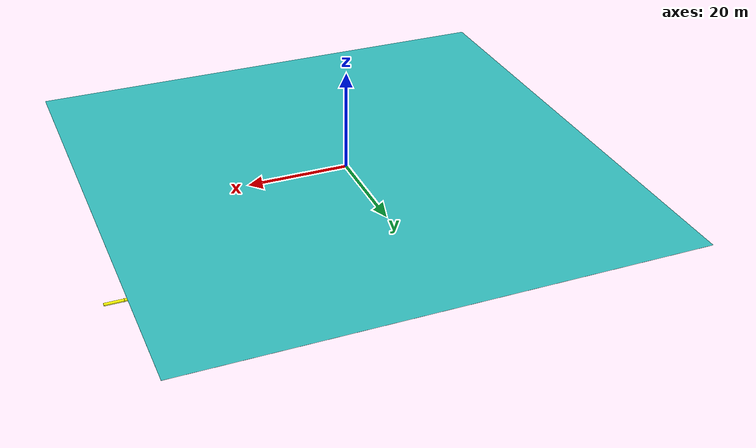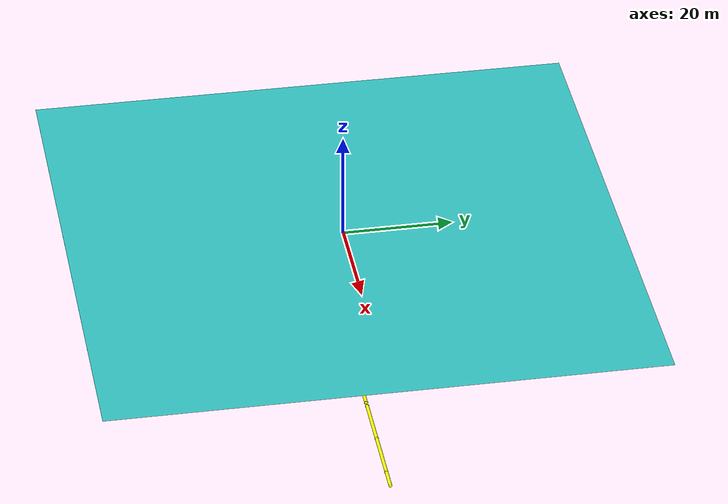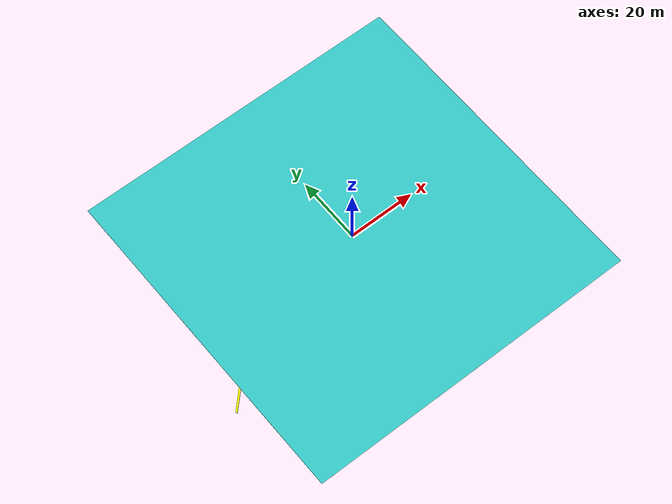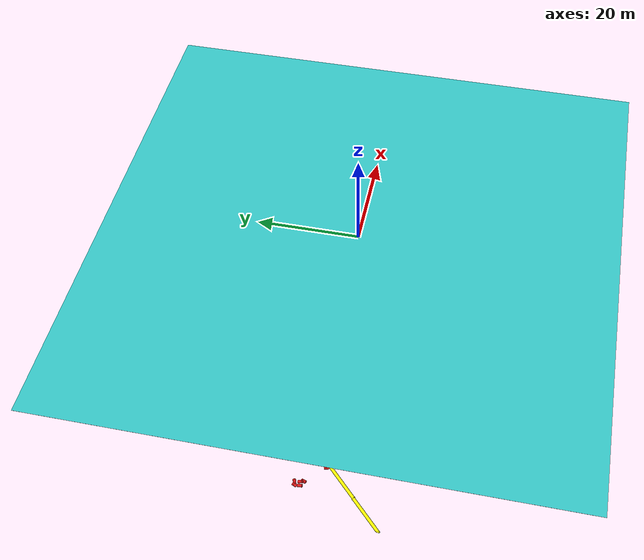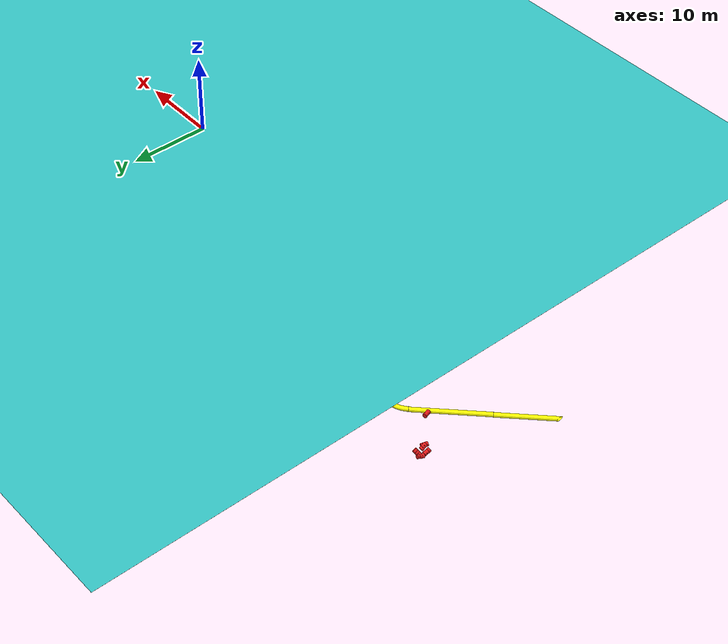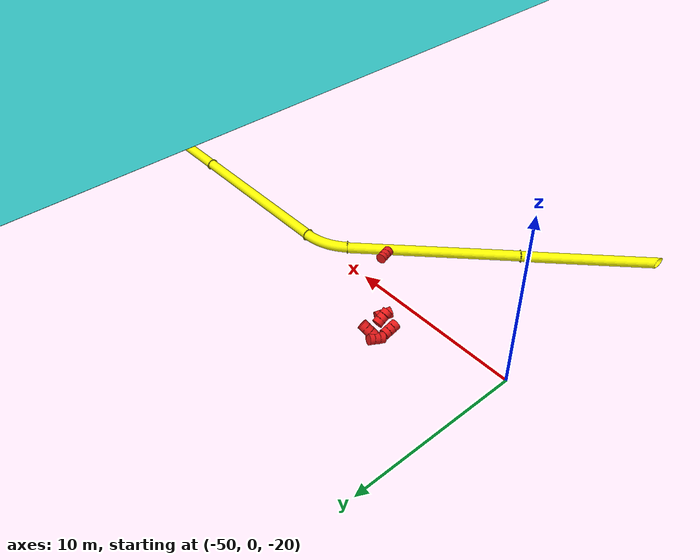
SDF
<sdf version="1.4">
 <world name="small_pipeline_world">
  <physics name="default_physics" default="true" type="ode">
   <max_step_size>0.01</max_step_size>
   <real_time_factor>1</real_time_factor>
   <real_time_update_rate>100</real_time_update_rate>
   <ode><solver><type>quick</type><iters>50</iters><sor>1.2</sor></solver></ode>
  </physics>
  <scene>
   <ambient>0.01 0.01 0.01 1.0</ambient>
   <sky><clouds><speed>12</speed></clouds></sky>
   <shadows>1</shadows>
  </scene>
  <spherical_coordinates>
   <latitude_deg>25</latitude_deg>
   <longitude_deg>-71</longitude_deg>
  </spherical_coordinates>
  <light type="directional" name="sun">
   <pose>0 0 150 0 0 0</pose>
   <diffuse>1 1 1 1</diffuse>
   <specular>.1 .1 .1 1</specular>
   <direction>0.3 0.3 -1</direction>
   <cast_shadows>false</cast_shadows>
  </light>
  <light type="directional" name="sun_diffuse">
   <pose>0 0 -150 0 0 0</pose>
   <diffuse>0.6 0.6 0.6 1</diffuse>
   <specular>0 0 0 1</specular>
   <direction>-0.3 -0.3 -1</direction>
   <cast_shadows>false</cast_shadows>
  </light>
  <include><name>ocean_surface</name><uri>model://ocean_surfaces/100m_by_100m_ocean</uri></include>
  <include>
   <name>pipe_segment1</name>
   <uri>model://pipelines/small/segments/clipped_segment_v1</uri>
   <pose>-51.56 -15.14 -20 0 0 2.36</pose>
  </include>
  <include>
   <name>pipe_segment2</name>
   <uri>model://pipelines/small/segments/straight_segment</uri>
   <pose>-44.49 -8.07 -20 0 0 2.36</pose>
  </include>
  <include>
   <name>pipe_segment3</name>
   <uri>model://pipelines/small/segments/bent_segment</uri>
   <pose>-37.41 -1 -20 0 3.14 2.36</pose>
  </include>
  <include>
   <name>pipe_segment4</name>
   <uri>model://pipelines/small/segments/straight_segment</uri>
   <pose>-35 0 -20 0 0 1.57</pose>
  </include>
  <include>
   <name>pipe_segment5</name>
   <uri>model://pipelines/small/segments/protected_segment</uri>
   <pose>-25 0 -20 0 0 1.57</pose>
  </include>
  <include>
   <name>pipe_segment6</name>
   <uri>model://pipelines/small/segments/dented_segment</uri>
   <pose>-15 0 -20 0 0 1.57</pose>
  </include>
  <include>
   <name>pipe_segment7</name>
   <uri>model://pipelines/small/segments/straight_segment</uri>
   <pose>-5 0 -20 0 0 1.57</pose>
  </include>
  <include>
   <name>pipe_segment9</name>
   <uri>model://pipelines/small/segments/straight_segment</uri>
   <pose>15 0 -20 0 0 1.57</pose>
  </include>
  <include>
   <name>pipe_segment11</name>
   <uri>model://pipelines/small/segments/straight_segment</uri>
   <pose>26 0 -20 0 0 1.57</pose>
  </include>
  <include>
   <name>pipe_segment12</name>
   <uri>model://pipelines/small/segments/straight_segment</uri>
   <pose>36 0 -20 0 0 1.57</pose>
  </include>
  <include>
   <name>pipe_segment13</name>
   <uri>model://pipelines/small/segments/clipped_segment_v2</uri>
   <pose>46 0 -20 0 0 1.57</pose>
  </include>
  <include><uri>model://objects/anchor</uri><pose>-13 -1.5 -20 2.9 0.53 0.96</pose></include>
  <include>
   <name>oil_drum1</name>
   <uri>model://objects/oil_drum</uri>
   <pose>-39.5 -2 -19.8 -0.79 1.57 1.05</pose>
  </include>
  <include>
   <name>oil_drum2</name>
   <uri>model://objects/oil_drum</uri>
   <pose>-44 2 -19.8 0 1.83 1.57</pose>
  </include>
  <include>
   <name>oil_drum4</name>
   <uri>model://objects/oil_drum</uri>
   <pose>-43 1.5 -19.8 0 1.66 1.22</pose>
  </include>
  <include>
   <name>oil_drum5</name>
   <uri>model://objects/oil_drum</uri>
   <pose>-44 3 -19.8 0 1.40 1.22</pose>
  </include>
  <include>
   <name>oil_drum6</name>
   <uri>model://objects/oil_drum</uri>
   <pose>-43.4 2 -19.4 -0.87 2.36 0.58</pose>
  </include>
  <include>
   <name>oil_drum7</name>
   <uri>model://objects/oil_drum</uri>
   <pose>-43.5 3.1 -19.5 4.10 3.37 5.25</pose>
  </include>
  <plugin name="underwater_current_plugin" filename="libuuv_underwater_current_ros_plugin.so">
   <namespace>hydrodynamics</namespace>
   <constant_current>
    <topic>current_velocity</topic>
    <velocity><mean>0</mean><min>0</min><max>5</max><mu>0.0</mu><noiseAmp>0.0</noiseAmp></velocity>
    <horizontal_angle>
     <mean>0</mean>
     <min>-3.141592653589793238</min>
     <max>3.141592653589793238</max>
     <mu>0.0</mu>
     <noiseAmp>0.0</noiseAmp>
    </horizontal_angle>
    <vertical_angle>
     <mean>0</mean>
     <min>-3.141592653589793238</min>
     <max>3.141592653589793238</max>
     <mu>0.0</mu>
     <noiseAmp>0.0</noiseAmp>
    </vertical_angle>
   </constant_current>
  </plugin>
  <plugin name="sc_interface" filename="libuuv_sc_ros_interface_plugin.so"/>
 </world>
</sdf>

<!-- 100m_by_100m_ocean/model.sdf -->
<!-- Copyright (c) TODO
Based on https://github.com/uuvsimulator/uuv_simulator/tree/master/uuv_gazebo_worlds
-->
<sdf version="1.5">
  <model name="100m_by_100m_ocean">
    <static>true</static>

   <link name="link">
      <visual name="visual">
        <pose>0 0 0 0 0 0</pose>
        <cast_shadows>false</cast_shadows>
        <geometry>
          <box>
            <size>100 100 0.01</size>
          </box>
        </geometry>
        <material>
          <script>
            <uri>file://materials/scripts/water.material</uri>
            <name>UUVSimulator/StaticTurquoiseWater</name>
          </script>
        </material>
      </visual>
    </link>

  </model>
</sdf>

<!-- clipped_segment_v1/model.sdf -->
<!-- Copyright (c) TODO
Based on https://github.com/uuvsimulator/uuv_simulator/tree/master/uuv_gazebo_worlds
-->
<sdf version="1.5">
  <model name="clipped_segment_v1">
    <static>true</static>

    <link name="link">
      <collision name="collision">
        <pose>0 0 0 0 0 0</pose>
        <geometry>
          <mesh>
            <uri>model://pipelines/small/segments/clipped_segment_v1/model.dae</uri>
            <scale>1.0 1.0 1.0</scale>
          </mesh>
        </geometry>
      </collision>

      <visual name="visual">
        <cast_shadows>true</cast_shadows>
        <pose>0 0 0 0 0 0</pose>
        <geometry>
          <mesh>
            <uri>model://pipelines/small/segments/clipped_segment_v1/model.dae</uri>
            <scale>1.0 1.0 1.0</scale>
          </mesh>
        </geometry>
      </visual>
    </link>

  </model>
</sdf>

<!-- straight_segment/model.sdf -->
<!-- Copyright (c) TODO
Based on https://github.com/uuvsimulator/uuv_simulator/tree/master/uuv_gazebo_worlds
-->
<sdf version="1.5">
  <model name="straight_segment">
    <static>true</static>

    <link name="link">
      <collision name="collision">
        <pose>0 0 0 0 0 0</pose>
        <geometry>
          <mesh>
            <uri>model://pipelines/small/segments/straight_segment/model.dae</uri>
            <scale>1.0 1.0 1.0</scale>
          </mesh>
        </geometry>
      </collision>

      <visual name="visual">
        <cast_shadows>true</cast_shadows>
        <pose>0 0 0 0 0 0</pose>
        <geometry>
          <mesh>
            <uri>model://pipelines/small/segments/straight_segment/model.dae</uri>
            <scale>1.0 1.0 1.0</scale>
          </mesh>
        </geometry>
      </visual>
    </link>

  </model>
</sdf>

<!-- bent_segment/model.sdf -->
<!-- Copyright (c) TODO
Based on https://github.com/uuvsimulator/uuv_simulator/tree/master/uuv_gazebo_worlds
-->
<sdf version="1.5">
  <model name="bent_segment">
    <static>true</static>

    <link name="link">
      <collision name="collision">
        <pose>0 0 0 0 0 0</pose>
        <geometry>
          <mesh>
            <uri>model://pipelines/small/segments/bent_segment/model.dae</uri>
            <scale>1.0 1.0 1.0</scale>
          </mesh>
        </geometry>
      </collision>

      <visual name="visual">
        <cast_shadows>true</cast_shadows>
        <pose>0 0 0 0 0 0</pose>
        <geometry>
          <mesh>
            <uri>model://pipelines/small/segments/bent_segment/model.dae</uri>
            <scale>1.0 1.0 1.0</scale>
          </mesh>
        </geometry>
      </visual>
    </link>

  </model>
</sdf>

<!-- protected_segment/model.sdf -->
<!-- Copyright (c) TODO
Based on https://github.com/uuvsimulator/uuv_simulator/tree/master/uuv_gazebo_worlds
-->
<sdf version="1.5">
  <model name="protected_segment">
    <static>true</static>

    <link name="link">
      <collision name="collision">
        <pose>0 0 0 0 0 0</pose>
        <geometry>
          <mesh>
            <uri>model://pipelines/small/segments/protected_segment/model.dae</uri>
            <scale>1.0 1.0 1.0</scale>
          </mesh>
        </geometry>
      </collision>

      <visual name="visual">
        <cast_shadows>true</cast_shadows>
        <pose>0 0 0 0 0 0</pose>
        <geometry>
          <mesh>
            <uri>model://pipelines/small/segments/protected_segment/model.dae</uri>
            <scale>1.0 1.0 1.0</scale>
          </mesh>
        </geometry>
      </visual>
    </link>

  </model>
</sdf>

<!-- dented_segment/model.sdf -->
<!-- Copyright (c) TODO
Based on https://github.com/uuvsimulator/uuv_simulator/tree/master/uuv_gazebo_worlds
-->
<sdf version="1.5">
  <model name="dented_segment">
    <static>true</static>

    <link name="link">
      <collision name="collision">
        <pose>0 0 0 0 0 0</pose>
        <geometry>
          <mesh>
            <uri>model://pipelines/small/segments/dented_segment/model.dae</uri>
            <scale>1.0 1.0 1.0</scale>
          </mesh>
        </geometry>
      </collision>

      <visual name="visual">
        <cast_shadows>true</cast_shadows>
        <pose>0 0 0 0 0 0</pose>
        <geometry>
          <mesh>
            <uri>model://pipelines/small/segments/dented_segment/model.dae</uri>
            <scale>1.0 1.0 1.0</scale>
          </mesh>
        </geometry>
      </visual>
    </link>

  </model>
</sdf>

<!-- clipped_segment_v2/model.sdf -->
<!-- Copyright (c) TODO
Based on https://github.com/uuvsimulator/uuv_simulator/tree/master/uuv_gazebo_worlds
-->
<sdf version="1.5">
  <model name="clipped_segment_v2">
    <static>true</static>

    <link name="link">
      <collision name="collision">
        <pose>0 0 0 0 0 0</pose>
        <geometry>
          <mesh>
            <uri>model://pipelines/small/segments/clipped_segment_v2/model.dae</uri>
            <scale>1.0 1.0 1.0</scale>
          </mesh>
        </geometry>
      </collision>

      <visual name="visual">
        <cast_shadows>true</cast_shadows>
        <pose>0 0 0 0 0 0</pose>
        <geometry>
          <mesh>
            <uri>model://pipelines/small/segments/clipped_segment_v2/model.dae</uri>
            <scale>1.0 1.0 1.0</scale>
          </mesh>
        </geometry>
      </visual>
    </link>

  </model>
</sdf>

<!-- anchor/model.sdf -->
<!-- Copyright (c) TODO
Based on https://github.com/uuvsimulator/uuv_simulator/tree/master/uuv_gazebo_worlds
-->
<sdf version="1.5">
  <model name="anchor">
    <static>true</static>

    <link name="link">
      <collision name="collision">
        <pose>0 0 0 0 0 0</pose>
        <geometry>
          <mesh>
            <uri>model://objects/anchor/model.dae</uri>
            <scale>1.0 1.0 1.0</scale>
          </mesh>
        </geometry>
      </collision>

      <visual name="visual">
        <cast_shadows>true</cast_shadows>
        <pose>0 0 0 0 0 0</pose>
        <geometry>
          <mesh>
            <uri>model://objects/anchor/model.dae</uri>
            <scale>1.0 1.0 1.0</scale>
          </mesh>
        </geometry>
      </visual>
    </link>

  </model>
</sdf>

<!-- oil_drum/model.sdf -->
<!-- Copyright (c) TODO
Based on https://github.com/uuvsimulator/uuv_simulator/tree/master/uuv_gazebo_worlds
-->
<sdf version="1.5">
  <model name="oil_drum">
    <static>true</static>

    <link name="link">
      <collision name="collision">
        <pose>0 0 0 0 0 0</pose>
        <geometry>
          <mesh>
            <uri>model://objects/oil_drum/model.dae</uri>
            <scale>1.0 1.0 1.0</scale>
          </mesh>
        </geometry>
      </collision>

      <visual name="visual">
        <cast_shadows>true</cast_shadows>
        <pose>0 0 0 0 0 0</pose>
        <geometry>
          <mesh>
            <uri>model://objects/oil_drum/model.dae</uri>
            <scale>1.0 1.0 1.0</scale>
          </mesh>
        </geometry>
      </visual>
    </link>

  </model>
</sdf>
